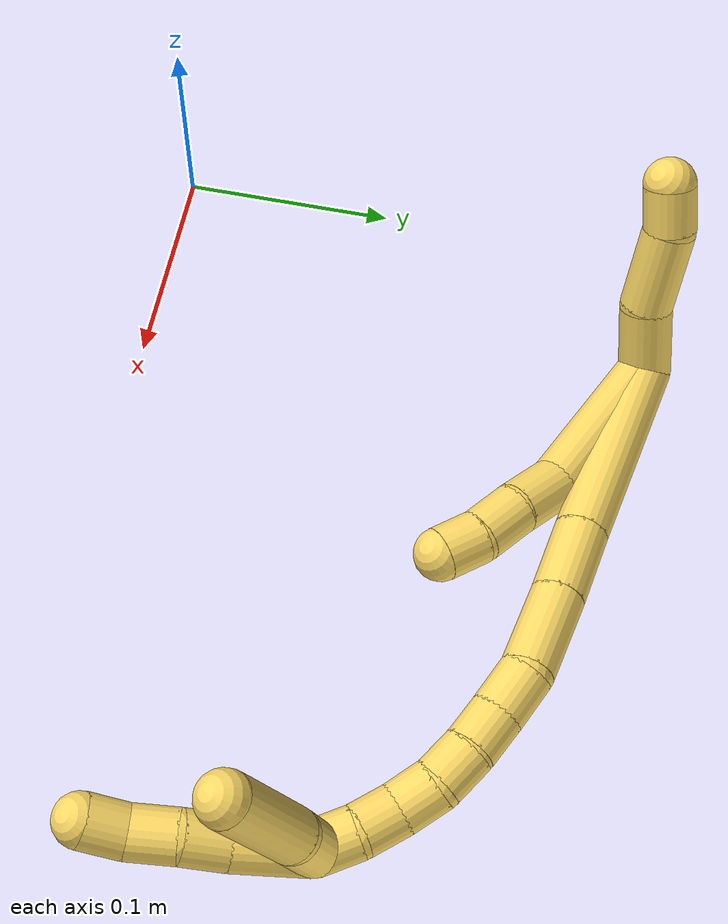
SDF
<sdf version="1.7">
 <world name="default">
  <model name="5">
   <static>0</static>
   <link name="5">
    <collision name="collision-cylinder-e_1_2_8">
     <pose>0.028809 -0.020367 -0.017771 2.28821 0.817242 1.52207</pose>
     <geometry><cylinder><radius>0.0125</radius><length>0.079008</length></cylinder></geometry>
     <surface>
      <friction><ode><mu>1.16</mu><mu2>1.16</mu2><slip1>0</slip1><slip2>0</slip2></ode></friction>
      <contact><ode><kp>1e+06</kp><kd>1</kd><max_vel>0</max_vel><min_depth>0.001</min_depth></ode></contact>
     </surface>
    </collision>
    <visual name="visual-cylinder-e_1_2_8">
     <pose>0.028809 -0.020367 -0.017771 2.28821 0.817242 1.52207</pose>
     <geometry><cylinder><radius>0.0125</radius><length>0.079008</length></cylinder></geometry>
     <material><ambient>1 0.858824 0.4 1</ambient></material>
    </visual>
    <collision name="collision-cylinder-e_2_8_9">
     <pose>0.066288 -0.045454 -0.044916 2.67523 0.690437 1.97426</pose>
     <geometry><cylinder><radius>0.0125</radius><length>0.027226</length></cylinder></geometry>
     <surface>
      <friction><ode><mu>1.16</mu><mu2>1.16</mu2><slip1>0</slip1><slip2>0</slip2></ode></friction>
      <contact><ode><kp>1e+06</kp><kd>1</kd><max_vel>0</max_vel><min_depth>0.001</min_depth></ode></contact>
     </surface>
    </collision>
    <visual name="visual-cylinder-e_2_8_9">
     <pose>0.066288 -0.045454 -0.044916 2.67523 0.690437 1.97426</pose>
     <geometry><cylinder><radius>0.0125</radius><length>0.027226</length></cylinder></geometry>
     <material><ambient>1 0.858824 0.4 1</ambient></material>
    </visual>
    <collision name="collision-cylinder-e_3_9_10">
     <pose>0.083753 -0.05419 -0.061192 2.61456 0.833658 2.0471</pose>
     <geometry><cylinder><radius>0.0125</radius><length>0.02376</length></cylinder></geometry>
     <surface>
      <friction><ode><mu>1.16</mu><mu2>1.16</mu2><slip1>0</slip1><slip2>0</slip2></ode></friction>
      <contact><ode><kp>1e+06</kp><kd>1</kd><max_vel>0</max_vel><min_depth>0.001</min_depth></ode></contact>
     </surface>
    </collision>
    <visual name="visual-cylinder-e_3_9_10">
     <pose>0.083753 -0.05419 -0.061192 2.61456 0.833658 2.0471</pose>
     <geometry><cylinder><radius>0.0125</radius><length>0.02376</length></cylinder></geometry>
     <material><ambient>1 0.858824 0.4 1</ambient></material>
    </visual>
    <collision name="collision-cylinder-e_4_10_6">
     <pose>0.100447 -0.05938 -0.074119 2.94921 0.910063 2.75218</pose>
     <geometry><cylinder><radius>0.0125</radius><length>0.020005</length></cylinder></geometry>
     <surface>
      <friction><ode><mu>1.16</mu><mu2>1.16</mu2><slip1>0</slip1><slip2>0</slip2></ode></friction>
      <contact><ode><kp>1e+06</kp><kd>1</kd><max_vel>0</max_vel><min_depth>0.001</min_depth></ode></contact>
     </surface>
    </collision>
    <visual name="visual-cylinder-e_4_10_6">
     <pose>0.100447 -0.05938 -0.074119 2.94921 0.910063 2.75218</pose>
     <geometry><cylinder><radius>0.0125</radius><length>0.020005</length></cylinder></geometry>
     <material><ambient>1 0.858824 0.4 1</ambient></material>
    </visual>
    <collision name="collision-cylinder-e_1_2_11">
     <pose>-0.011268 0.004994 -0.013257 -2.78133 -0.671939 2.18024</pose>
     <geometry><cylinder><radius>0.0125</radius><length>0.036203</length></cylinder></geometry>
     <surface>
      <friction><ode><mu>1.16</mu><mu2>1.16</mu2><slip1>0</slip1><slip2>0</slip2></ode></friction>
      <contact><ode><kp>1e+06</kp><kd>1</kd><max_vel>0</max_vel><min_depth>0.001</min_depth></ode></contact>
     </surface>
    </collision>
    <visual name="visual-cylinder-e_1_2_11">
     <pose>-0.011268 0.004994 -0.013257 -2.78133 -0.671939 2.18024</pose>
     <geometry><cylinder><radius>0.0125</radius><length>0.036203</length></cylinder></geometry>
     <material><ambient>1 0.858824 0.4 1</ambient></material>
    </visual>
    <collision name="collision-cylinder-e_2_11_12">
     <pose>-0.038857 0.01347 -0.038894 -2.86738 -0.903448 2.58747</pose>
     <geometry><cylinder><radius>0.0125</radius><length>0.041557</length></cylinder></geometry>
     <surface>
      <friction><ode><mu>1.16</mu><mu2>1.16</mu2><slip1>0</slip1><slip2>0</slip2></ode></friction>
      <contact><ode><kp>1e+06</kp><kd>1</kd><max_vel>0</max_vel><min_depth>0.001</min_depth></ode></contact>
     </surface>
    </collision>
    <visual name="visual-cylinder-e_2_11_12">
     <pose>-0.038857 0.01347 -0.038894 -2.86738 -0.903448 2.58747</pose>
     <geometry><cylinder><radius>0.0125</radius><length>0.041557</length></cylinder></geometry>
     <material><ambient>1 0.858824 0.4 1</ambient></material>
    </visual>
    <collision name="collision-cylinder-e_3_12_5">
     <pose>-0.062134 0.021158 -0.058862 -2.63558 -0.675856 1.87297</pose>
     <geometry><cylinder><radius>0.0125</radius><length>0.02224</length></cylinder></geometry>
     <surface>
      <friction><ode><mu>1.16</mu><mu2>1.16</mu2><slip1>0</slip1><slip2>0</slip2></ode></friction>
      <contact><ode><kp>1e+06</kp><kd>1</kd><max_vel>0</max_vel><min_depth>0.001</min_depth></ode></contact>
     </surface>
    </collision>
    <visual name="visual-cylinder-e_3_12_5">
     <pose>-0.062134 0.021158 -0.058862 -2.63558 -0.675856 1.87297</pose>
     <geometry><cylinder><radius>0.0125</radius><length>0.02224</length></cylinder></geometry>
     <material><ambient>1 0.858824 0.4 1</ambient></material>
    </visual>
    <collision name="collision-cylinder-e_1_2_13">
     <pose>0.029575 -0.035069 -0.017805 2.04061 0.644763 0.996796</pose>
     <geometry><cylinder><radius>0.0125</radius><length>0.098418</length></cylinder></geometry>
     <surface>
      <friction><ode><mu>1.16</mu><mu2>1.16</mu2><slip1>0</slip1><slip2>0</slip2></ode></friction>
      <contact><ode><kp>1e+06</kp><kd>1</kd><max_vel>0</max_vel><min_depth>0.001</min_depth></ode></contact>
     </surface>
    </collision>
    <visual name="visual-cylinder-e_1_2_13">
     <pose>0.029575 -0.035069 -0.017805 2.04061 0.644763 0.996796</pose>
     <geometry><cylinder><radius>0.0125</radius><length>0.098418</length></cylinder></geometry>
     <material><ambient>1 0.858824 0.4 1</ambient></material>
    </visual>
    <collision name="collision-cylinder-e_2_13_14">
     <pose>0.069973 -0.083337 -0.041956 2.0189 0.63644 0.965096</pose>
     <geometry><cylinder><radius>0.0125</radius><length>0.036422</length></cylinder></geometry>
     <surface>
      <friction><ode><mu>1.16</mu><mu2>1.16</mu2><slip1>0</slip1><slip2>0</slip2></ode></friction>
      <contact><ode><kp>1e+06</kp><kd>1</kd><max_vel>0</max_vel><min_depth>0.001</min_depth></ode></contact>
     </surface>
    </collision>
    <visual name="visual-cylinder-e_2_13_14">
     <pose>0.069973 -0.083337 -0.041956 2.0189 0.63644 0.965096</pose>
     <geometry><cylinder><radius>0.0125</radius><length>0.036422</length></cylinder></geometry>
     <material><ambient>1 0.858824 0.4 1</ambient></material>
    </visual>
    <collision name="collision-cylinder-e_3_14_15">
     <pose>0.093344 -0.111068 -0.055863 2.05063 0.653629 1.01872</pose>
     <geometry><cylinder><radius>0.0125</radius><length>0.041269</length></cylinder></geometry>
     <surface>
      <friction><ode><mu>1.16</mu><mu2>1.16</mu2><slip1>0</slip1><slip2>0</slip2></ode></friction>
      <contact><ode><kp>1e+06</kp><kd>1</kd><max_vel>0</max_vel><min_depth>0.001</min_depth></ode></contact>
     </surface>
    </collision>
    <visual name="visual-cylinder-e_3_14_15">
     <pose>0.093344 -0.111068 -0.055863 2.05063 0.653629 1.01872</pose>
     <geometry><cylinder><radius>0.0125</radius><length>0.041269</length></cylinder></geometry>
     <material><ambient>1 0.858824 0.4 1</ambient></material>
    </visual>
    <collision name="collision-cylinder-e_4_15_16">
     <pose>0.115513 -0.131012 -0.066737 2.11985 0.987761 1.53054</pose>
     <geometry><cylinder><radius>0.0125</radius><length>0.023051</length></cylinder></geometry>
     <surface>
      <friction><ode><mu>1.16</mu><mu2>1.16</mu2><slip1>0</slip1><slip2>0</slip2></ode></friction>
      <contact><ode><kp>1e+06</kp><kd>1</kd><max_vel>0</max_vel><min_depth>0.001</min_depth></ode></contact>
     </surface>
    </collision>
    <visual name="visual-cylinder-e_4_15_16">
     <pose>0.115513 -0.131012 -0.066737 2.11985 0.987761 1.53054</pose>
     <geometry><cylinder><radius>0.0125</radius><length>0.023051</length></cylinder></geometry>
     <material><ambient>1 0.858824 0.4 1</ambient></material>
    </visual>
    <collision name="collision-cylinder-e_5_16_17">
     <pose>0.133222 -0.141341 -0.07394 2.24043 0.91135 1.58374</pose>
     <geometry><cylinder><radius>0.0125</radius><length>0.020466</length></cylinder></geometry>
     <surface>
      <friction><ode><mu>1.16</mu><mu2>1.16</mu2><slip1>0</slip1><slip2>0</slip2></ode></friction>
      <contact><ode><kp>1e+06</kp><kd>1</kd><max_vel>0</max_vel><min_depth>0.001</min_depth></ode></contact>
     </surface>
    </collision>
    <visual name="visual-cylinder-e_5_16_17">
     <pose>0.133222 -0.141341 -0.07394 2.24043 0.91135 1.58374</pose>
     <geometry><cylinder><radius>0.0125</radius><length>0.020466</length></cylinder></geometry>
     <material><ambient>1 0.858824 0.4 1</ambient></material>
    </visual>
    <collision name="collision-cylinder-e_6_17_18">
     <pose>0.150107 -0.149763 -0.081253 2.34379 1.06271 1.8973</pose>
     <geometry><cylinder><radius>0.0125</radius><length>0.020139</length></cylinder></geometry>
     <surface>
      <friction><ode><mu>1.16</mu><mu2>1.16</mu2><slip1>0</slip1><slip2>0</slip2></ode></friction>
      <contact><ode><kp>1e+06</kp><kd>1</kd><max_vel>0</max_vel><min_depth>0.001</min_depth></ode></contact>
     </surface>
    </collision>
    <visual name="visual-cylinder-e_6_17_18">
     <pose>0.150107 -0.149763 -0.081253 2.34379 1.06271 1.8973</pose>
     <geometry><cylinder><radius>0.0125</radius><length>0.020139</length></cylinder></geometry>
     <material><ambient>1 0.858824 0.4 1</ambient></material>
    </visual>
    <collision name="collision-cylinder-e_7_18_19">
     <pose>0.168565 -0.154014 -0.08754 2.88759 1.27333 2.79957</pose>
     <geometry><cylinder><radius>0.0125</radius><length>0.020208</length></cylinder></geometry>
     <surface>
      <friction><ode><mu>1.16</mu><mu2>1.16</mu2><slip1>0</slip1><slip2>0</slip2></ode></friction>
      <contact><ode><kp>1e+06</kp><kd>1</kd><max_vel>0</max_vel><min_depth>0.001</min_depth></ode></contact>
     </surface>
    </collision>
    <visual name="visual-cylinder-e_7_18_19">
     <pose>0.168565 -0.154014 -0.08754 2.88759 1.27333 2.79957</pose>
     <geometry><cylinder><radius>0.0125</radius><length>0.020208</length></cylinder></geometry>
     <material><ambient>1 0.858824 0.4 1</ambient></material>
    </visual>
    <collision name="collision-cylinder-e_8_19_20">
     <pose>0.186505 -0.156035 -0.09589 2.91275 0.973611 2.71397</pose>
     <geometry><cylinder><radius>0.0125</radius><length>0.020026</length></cylinder></geometry>
     <surface>
      <friction><ode><mu>1.16</mu><mu2>1.16</mu2><slip1>0</slip1><slip2>0</slip2></ode></friction>
      <contact><ode><kp>1e+06</kp><kd>1</kd><max_vel>0</max_vel><min_depth>0.001</min_depth></ode></contact>
     </surface>
    </collision>
    <visual name="visual-cylinder-e_8_19_20">
     <pose>0.186505 -0.156035 -0.09589 2.91275 0.973611 2.71397</pose>
     <geometry><cylinder><radius>0.0125</radius><length>0.020026</length></cylinder></geometry>
     <material><ambient>1 0.858824 0.4 1</ambient></material>
    </visual>
    <collision name="collision-cylinder-e_9_20_1">
     <pose>0.203701 -0.156408 -0.105813 -2.94052 1.10069 -2.81569</pose>
     <geometry><cylinder><radius>0.0125</radius><length>0.02</length></cylinder></geometry>
     <surface>
      <friction><ode><mu>1.16</mu><mu2>1.16</mu2><slip1>0</slip1><slip2>0</slip2></ode></friction>
      <contact><ode><kp>1e+06</kp><kd>1</kd><max_vel>0</max_vel><min_depth>0.001</min_depth></ode></contact>
     </surface>
    </collision>
    <visual name="visual-cylinder-e_9_20_1">
     <pose>0.203701 -0.156408 -0.105813 -2.94052 1.10069 -2.81569</pose>
     <geometry><cylinder><radius>0.0125</radius><length>0.02</length></cylinder></geometry>
     <material><ambient>1 0.858824 0.4 1</ambient></material>
    </visual>
    <collision name="collision-cylinder-e_1_1_21">
     <pose>0.205804 -0.161798 -0.13132 2.85125 -0.30041 -1.60537</pose>
     <geometry><cylinder><radius>0.0125</radius><length>0.046039</length></cylinder></geometry>
     <surface>
      <friction><ode><mu>1.16</mu><mu2>1.16</mu2><slip1>0</slip1><slip2>0</slip2></ode></friction>
      <contact><ode><kp>1e+06</kp><kd>1</kd><max_vel>0</max_vel><min_depth>0.001</min_depth></ode></contact>
     </surface>
    </collision>
    <visual name="visual-cylinder-e_1_1_21">
     <pose>0.205804 -0.161798 -0.13132 2.85125 -0.30041 -1.60537</pose>
     <geometry><cylinder><radius>0.0125</radius><length>0.046039</length></cylinder></geometry>
     <material><ambient>1 0.858824 0.4 1</ambient></material>
    </visual>
    <collision name="collision-cylinder-e_2_21_4">
     <pose>0.196083 -0.168046 -0.179211 -3.13982 -0.108049 3.10876</pose>
     <geometry><cylinder><radius>0.0125</radius><length>0.053961</length></cylinder></geometry>
     <surface>
      <friction><ode><mu>1.16</mu><mu2>1.16</mu2><slip1>0</slip1><slip2>0</slip2></ode></friction>
      <contact><ode><kp>1e+06</kp><kd>1</kd><max_vel>0</max_vel><min_depth>0.001</min_depth></ode></contact>
     </surface>
    </collision>
    <visual name="visual-cylinder-e_2_21_4">
     <pose>0.196083 -0.168046 -0.179211 -3.13982 -0.108049 3.10876</pose>
     <geometry><cylinder><radius>0.0125</radius><length>0.053961</length></cylinder></geometry>
     <material><ambient>1 0.858824 0.4 1</ambient></material>
    </visual>
    <collision name="collision-cylinder-e_1_1_22">
     <pose>0.224131 -0.148792 -0.122357 -2.63539 0.693877 -1.89966</pose>
     <geometry><cylinder><radius>0.0125</radius><length>0.03601</length></cylinder></geometry>
     <surface>
      <friction><ode><mu>1.16</mu><mu2>1.16</mu2><slip1>0</slip1><slip2>0</slip2></ode></friction>
      <contact><ode><kp>1e+06</kp><kd>1</kd><max_vel>0</max_vel><min_depth>0.001</min_depth></ode></contact>
     </surface>
    </collision>
    <visual name="visual-cylinder-e_1_1_22">
     <pose>0.224131 -0.148792 -0.122357 -2.63539 0.693877 -1.89966</pose>
     <geometry><cylinder><radius>0.0125</radius><length>0.03601</length></cylinder></geometry>
     <material><ambient>1 0.858824 0.4 1</ambient></material>
    </visual>
    <collision name="collision-cylinder-e_2_22_23">
     <pose>0.241369 -0.138103 -0.142505 -2.6823 0.567818 -1.79071</pose>
     <geometry><cylinder><radius>0.0125</radius><length>0.021284</length></cylinder></geometry>
     <surface>
      <friction><ode><mu>1.16</mu><mu2>1.16</mu2><slip1>0</slip1><slip2>0</slip2></ode></friction>
      <contact><ode><kp>1e+06</kp><kd>1</kd><max_vel>0</max_vel><min_depth>0.001</min_depth></ode></contact>
     </surface>
    </collision>
    <visual name="visual-cylinder-e_2_22_23">
     <pose>0.241369 -0.138103 -0.142505 -2.6823 0.567818 -1.79071</pose>
     <geometry><cylinder><radius>0.0125</radius><length>0.021284</length></cylinder></geometry>
     <material><ambient>1 0.858824 0.4 1</ambient></material>
    </visual>
    <collision name="collision-cylinder-e_3_23_24">
     <pose>0.254798 -0.128853 -0.156981 -2.45508 0.74721 -1.66309</pose>
     <geometry><cylinder><radius>0.0125</radius><length>0.022678</length></cylinder></geometry>
     <surface>
      <friction><ode><mu>1.16</mu><mu2>1.16</mu2><slip1>0</slip1><slip2>0</slip2></ode></friction>
      <contact><ode><kp>1e+06</kp><kd>1</kd><max_vel>0</max_vel><min_depth>0.001</min_depth></ode></contact>
     </surface>
    </collision>
    <visual name="visual-cylinder-e_3_23_24">
     <pose>0.254798 -0.128853 -0.156981 -2.45508 0.74721 -1.66309</pose>
     <geometry><cylinder><radius>0.0125</radius><length>0.022678</length></cylinder></geometry>
     <material><ambient>1 0.858824 0.4 1</ambient></material>
    </visual>
    <collision name="collision-cylinder-e_4_24_3">
     <pose>0.266868 -0.119416 -0.171408 -2.66122 0.450961 -1.50531</pose>
     <geometry><cylinder><radius>0.0125</radius><length>0.020028</length></cylinder></geometry>
     <surface>
      <friction><ode><mu>1.16</mu><mu2>1.16</mu2><slip1>0</slip1><slip2>0</slip2></ode></friction>
      <contact><ode><kp>1e+06</kp><kd>1</kd><max_vel>0</max_vel><min_depth>0.001</min_depth></ode></contact>
     </surface>
    </collision>
    <visual name="visual-cylinder-e_4_24_3">
     <pose>0.266868 -0.119416 -0.171408 -2.66122 0.450961 -1.50531</pose>
     <geometry><cylinder><radius>0.0125</radius><length>0.020028</length></cylinder></geometry>
     <material><ambient>1 0.858824 0.4 1</ambient></material>
    </visual>
    <collision name="collision-sphere-3">
     <pose>0.271232 -0.115251 -0.179401 0 -0 0</pose>
     <geometry><sphere><radius>0.0125</radius></sphere></geometry>
     <surface>
      <friction><ode><mu>1.16</mu><mu2>1.16</mu2><slip1>0</slip1><slip2>0</slip2></ode></friction>
      <contact><ode><kp>1e+06</kp><kd>1</kd><max_vel>0</max_vel><min_depth>0.001</min_depth></ode></contact>
     </surface>
    </collision>
    <visual name="visual-sphere-3">
     <pose>0.271232 -0.115251 -0.179401 0 -0 0</pose>
     <geometry><sphere><radius>0.0125</radius></sphere></geometry>
     <material><ambient>1 0.858824 0.4 1</ambient></material>
    </visual>
    <collision name="collision-sphere-24">
     <pose>0.262503 -0.123581 -0.163415 0 -0 0</pose>
     <geometry><sphere><radius>0.0125</radius></sphere></geometry>
     <surface>
      <friction><ode><mu>1.16</mu><mu2>1.16</mu2><slip1>0</slip1><slip2>0</slip2></ode></friction>
      <contact><ode><kp>1e+06</kp><kd>1</kd><max_vel>0</max_vel><min_depth>0.001</min_depth></ode></contact>
     </surface>
    </collision>
    <visual name="visual-sphere-24">
     <pose>0.262503 -0.123581 -0.163415 0 -0 0</pose>
     <geometry><sphere><radius>0.0125</radius></sphere></geometry>
     <material><ambient>1 0.858824 0.4 1</ambient></material>
    </visual>
    <collision name="collision-sphere-23">
     <pose>0.247092 -0.134126 -0.150548 0 -0 0</pose>
     <geometry><sphere><radius>0.0125</radius></sphere></geometry>
     <surface>
      <friction><ode><mu>1.16</mu><mu2>1.16</mu2><slip1>0</slip1><slip2>0</slip2></ode></friction>
      <contact><ode><kp>1e+06</kp><kd>1</kd><max_vel>0</max_vel><min_depth>0.001</min_depth></ode></contact>
     </surface>
    </collision>
    <visual name="visual-sphere-23">
     <pose>0.247092 -0.134126 -0.150548 0 -0 0</pose>
     <geometry><sphere><radius>0.0125</radius></sphere></geometry>
     <material><ambient>1 0.858824 0.4 1</ambient></material>
    </visual>
    <collision name="collision-sphere-22">
     <pose>0.235645 -0.142081 -0.134463 0 -0 0</pose>
     <geometry><sphere><radius>0.0125</radius></sphere></geometry>
     <surface>
      <friction><ode><mu>1.16</mu><mu2>1.16</mu2><slip1>0</slip1><slip2>0</slip2></ode></friction>
      <contact><ode><kp>1e+06</kp><kd>1</kd><max_vel>0</max_vel><min_depth>0.001</min_depth></ode></contact>
     </surface>
    </collision>
    <visual name="visual-sphere-22">
     <pose>0.235645 -0.142081 -0.134463 0 -0 0</pose>
     <geometry><sphere><radius>0.0125</radius></sphere></geometry>
     <material><ambient>1 0.858824 0.4 1</ambient></material>
    </visual>
    <collision name="collision-sphere-4">
     <pose>0.193173 -0.167998 -0.206034 0 -0 0</pose>
     <geometry><sphere><radius>0.0125</radius></sphere></geometry>
     <surface>
      <friction><ode><mu>1.16</mu><mu2>1.16</mu2><slip1>0</slip1><slip2>0</slip2></ode></friction>
      <contact><ode><kp>1e+06</kp><kd>1</kd><max_vel>0</max_vel><min_depth>0.001</min_depth></ode></contact>
     </surface>
    </collision>
    <visual name="visual-sphere-4">
     <pose>0.193173 -0.167998 -0.206034 0 -0 0</pose>
     <geometry><sphere><radius>0.0125</radius></sphere></geometry>
     <material><ambient>1 0.858824 0.4 1</ambient></material>
    </visual>
    <collision name="collision-sphere-21">
     <pose>0.198992 -0.168093 -0.152388 0 -0 0</pose>
     <geometry><sphere><radius>0.0125</radius></sphere></geometry>
     <surface>
      <friction><ode><mu>1.16</mu><mu2>1.16</mu2><slip1>0</slip1><slip2>0</slip2></ode></friction>
      <contact><ode><kp>1e+06</kp><kd>1</kd><max_vel>0</max_vel><min_depth>0.001</min_depth></ode></contact>
     </surface>
    </collision>
    <visual name="visual-sphere-21">
     <pose>0.198992 -0.168093 -0.152388 0 -0 0</pose>
     <geometry><sphere><radius>0.0125</radius></sphere></geometry>
     <material><ambient>1 0.858824 0.4 1</ambient></material>
    </visual>
    <collision name="collision-sphere-1">
     <pose>0.212616 -0.155503 -0.110251 0 -0 0</pose>
     <geometry><sphere><radius>0.0125</radius></sphere></geometry>
     <surface>
      <friction><ode><mu>1.16</mu><mu2>1.16</mu2><slip1>0</slip1><slip2>0</slip2></ode></friction>
      <contact><ode><kp>1e+06</kp><kd>1</kd><max_vel>0</max_vel><min_depth>0.001</min_depth></ode></contact>
     </surface>
    </collision>
    <visual name="visual-sphere-1">
     <pose>0.212616 -0.155503 -0.110251 0 -0 0</pose>
     <geometry><sphere><radius>0.0125</radius></sphere></geometry>
     <material><ambient>1 0.858824 0.4 1</ambient></material>
    </visual>
    <collision name="collision-sphere-11">
     <pose>-0.022537 0.009988 -0.026514 0 -0 0</pose>
     <geometry><sphere><radius>0.0125</radius></sphere></geometry>
     <surface>
      <friction><ode><mu>1.16</mu><mu2>1.16</mu2><slip1>0</slip1><slip2>0</slip2></ode></friction>
      <contact><ode><kp>1e+06</kp><kd>1</kd><max_vel>0</max_vel><min_depth>0.001</min_depth></ode></contact>
     </surface>
    </collision>
    <visual name="visual-sphere-11">
     <pose>-0.022537 0.009988 -0.026514 0 -0 0</pose>
     <geometry><sphere><radius>0.0125</radius></sphere></geometry>
     <material><ambient>1 0.858824 0.4 1</ambient></material>
    </visual>
    <collision name="collision-sphere-6">
     <pose>0.108344 -0.060553 -0.080145 0 -0 0</pose>
     <geometry><sphere><radius>0.0125</radius></sphere></geometry>
     <surface>
      <friction><ode><mu>1.16</mu><mu2>1.16</mu2><slip1>0</slip1><slip2>0</slip2></ode></friction>
      <contact><ode><kp>1e+06</kp><kd>1</kd><max_vel>0</max_vel><min_depth>0.001</min_depth></ode></contact>
     </surface>
    </collision>
    <visual name="visual-sphere-6">
     <pose>0.108344 -0.060553 -0.080145 0 -0 0</pose>
     <geometry><sphere><radius>0.0125</radius></sphere></geometry>
     <material><ambient>1 0.858824 0.4 1</ambient></material>
    </visual>
    <collision name="collision-sphere-10">
     <pose>0.092549 -0.058206 -0.068094 0 -0 0</pose>
     <geometry><sphere><radius>0.0125</radius></sphere></geometry>
     <surface>
      <friction><ode><mu>1.16</mu><mu2>1.16</mu2><slip1>0</slip1><slip2>0</slip2></ode></friction>
      <contact><ode><kp>1e+06</kp><kd>1</kd><max_vel>0</max_vel><min_depth>0.001</min_depth></ode></contact>
     </surface>
    </collision>
    <visual name="visual-sphere-10">
     <pose>0.092549 -0.058206 -0.068094 0 -0 0</pose>
     <geometry><sphere><radius>0.0125</radius></sphere></geometry>
     <material><ambient>1 0.858824 0.4 1</ambient></material>
    </visual>
    <collision name="collision-sphere-9">
     <pose>0.074958 -0.050173 -0.05429 0 -0 0</pose>
     <geometry><sphere><radius>0.0125</radius></sphere></geometry>
     <surface>
      <friction><ode><mu>1.16</mu><mu2>1.16</mu2><slip1>0</slip1><slip2>0</slip2></ode></friction>
      <contact><ode><kp>1e+06</kp><kd>1</kd><max_vel>0</max_vel><min_depth>0.001</min_depth></ode></contact>
     </surface>
    </collision>
    <visual name="visual-sphere-9">
     <pose>0.074958 -0.050173 -0.05429 0 -0 0</pose>
     <geometry><sphere><radius>0.0125</radius></sphere></geometry>
     <material><ambient>1 0.858824 0.4 1</ambient></material>
    </visual>
    <collision name="collision-sphere-2">
     <geometry><sphere><radius>0.0125</radius></sphere></geometry>
     <surface>
      <friction><ode><mu>1.16</mu><mu2>1.16</mu2><slip1>0</slip1><slip2>0</slip2></ode></friction>
      <contact><ode><kp>1e+06</kp><kd>1</kd><max_vel>0</max_vel><min_depth>0.001</min_depth></ode></contact>
     </surface>
    </collision>
    <visual name="visual-sphere-2">
     <geometry><sphere><radius>0.0125</radius></sphere></geometry>
     <material><ambient>1 0.858824 0.4 1</ambient></material>
    </visual>
    <collision name="collision-sphere-19">
     <pose>0.178225 -0.154758 -0.090406 0 -0 0</pose>
     <geometry><sphere><radius>0.0125</radius></sphere></geometry>
     <surface>
      <friction><ode><mu>1.16</mu><mu2>1.16</mu2><slip1>0</slip1><slip2>0</slip2></ode></friction>
      <contact><ode><kp>1e+06</kp><kd>1</kd><max_vel>0</max_vel><min_depth>0.001</min_depth></ode></contact>
     </surface>
    </collision>
    <visual name="visual-sphere-19">
     <pose>0.178225 -0.154758 -0.090406 0 -0 0</pose>
     <geometry><sphere><radius>0.0125</radius></sphere></geometry>
     <material><ambient>1 0.858824 0.4 1</ambient></material>
    </visual>
    <collision name="collision-sphere-8">
     <pose>0.057618 -0.040735 -0.035541 0 -0 0</pose>
     <geometry><sphere><radius>0.0125</radius></sphere></geometry>
     <surface>
      <friction><ode><mu>1.16</mu><mu2>1.16</mu2><slip1>0</slip1><slip2>0</slip2></ode></friction>
      <contact><ode><kp>1e+06</kp><kd>1</kd><max_vel>0</max_vel><min_depth>0.001</min_depth></ode></contact>
     </surface>
    </collision>
    <visual name="visual-sphere-8">
     <pose>0.057618 -0.040735 -0.035541 0 -0 0</pose>
     <geometry><sphere><radius>0.0125</radius></sphere></geometry>
     <material><ambient>1 0.858824 0.4 1</ambient></material>
    </visual>
    <collision name="collision-sphere-12">
     <pose>-0.055178 0.016953 -0.051273 0 -0 0</pose>
     <geometry><sphere><radius>0.0125</radius></sphere></geometry>
     <surface>
      <friction><ode><mu>1.16</mu><mu2>1.16</mu2><slip1>0</slip1><slip2>0</slip2></ode></friction>
      <contact><ode><kp>1e+06</kp><kd>1</kd><max_vel>0</max_vel><min_depth>0.001</min_depth></ode></contact>
     </surface>
    </collision>
    <visual name="visual-sphere-12">
     <pose>-0.055178 0.016953 -0.051273 0 -0 0</pose>
     <geometry><sphere><radius>0.0125</radius></sphere></geometry>
     <material><ambient>1 0.858824 0.4 1</ambient></material>
    </visual>
    <collision name="collision-sphere-5">
     <pose>-0.069091 0.025362 -0.06645 0 -0 0</pose>
     <geometry><sphere><radius>0.0125</radius></sphere></geometry>
     <surface>
      <friction><ode><mu>1.16</mu><mu2>1.16</mu2><slip1>0</slip1><slip2>0</slip2></ode></friction>
      <contact><ode><kp>1e+06</kp><kd>1</kd><max_vel>0</max_vel><min_depth>0.001</min_depth></ode></contact>
     </surface>
    </collision>
    <visual name="visual-sphere-5">
     <pose>-0.069091 0.025362 -0.06645 0 -0 0</pose>
     <geometry><sphere><radius>0.0125</radius></sphere></geometry>
     <material><ambient>1 0.858824 0.4 1</ambient></material>
    </visual>
    <collision name="collision-sphere-13">
     <pose>0.05915 -0.070137 -0.035611 0 -0 0</pose>
     <geometry><sphere><radius>0.0125</radius></sphere></geometry>
     <surface>
      <friction><ode><mu>1.16</mu><mu2>1.16</mu2><slip1>0</slip1><slip2>0</slip2></ode></friction>
      <contact><ode><kp>1e+06</kp><kd>1</kd><max_vel>0</max_vel><min_depth>0.001</min_depth></ode></contact>
     </surface>
    </collision>
    <visual name="visual-sphere-13">
     <pose>0.05915 -0.070137 -0.035611 0 -0 0</pose>
     <geometry><sphere><radius>0.0125</radius></sphere></geometry>
     <material><ambient>1 0.858824 0.4 1</ambient></material>
    </visual>
    <collision name="collision-sphere-14">
     <pose>0.080797 -0.096536 -0.048301 0 -0 0</pose>
     <geometry><sphere><radius>0.0125</radius></sphere></geometry>
     <surface>
      <friction><ode><mu>1.16</mu><mu2>1.16</mu2><slip1>0</slip1><slip2>0</slip2></ode></friction>
      <contact><ode><kp>1e+06</kp><kd>1</kd><max_vel>0</max_vel><min_depth>0.001</min_depth></ode></contact>
     </surface>
    </collision>
    <visual name="visual-sphere-14">
     <pose>0.080797 -0.096536 -0.048301 0 -0 0</pose>
     <geometry><sphere><radius>0.0125</radius></sphere></geometry>
     <material><ambient>1 0.858824 0.4 1</ambient></material>
    </visual>
    <collision name="collision-sphere-15">
     <pose>0.105891 -0.125599 -0.063426 0 -0 0</pose>
     <geometry><sphere><radius>0.0125</radius></sphere></geometry>
     <surface>
      <friction><ode><mu>1.16</mu><mu2>1.16</mu2><slip1>0</slip1><slip2>0</slip2></ode></friction>
      <contact><ode><kp>1e+06</kp><kd>1</kd><max_vel>0</max_vel><min_depth>0.001</min_depth></ode></contact>
     </surface>
    </collision>
    <visual name="visual-sphere-15">
     <pose>0.105891 -0.125599 -0.063426 0 -0 0</pose>
     <geometry><sphere><radius>0.0125</radius></sphere></geometry>
     <material><ambient>1 0.858824 0.4 1</ambient></material>
    </visual>
    <collision name="collision-sphere-16">
     <pose>0.125135 -0.136425 -0.070049 0 -0 0</pose>
     <geometry><sphere><radius>0.0125</radius></sphere></geometry>
     <surface>
      <friction><ode><mu>1.16</mu><mu2>1.16</mu2><slip1>0</slip1><slip2>0</slip2></ode></friction>
      <contact><ode><kp>1e+06</kp><kd>1</kd><max_vel>0</max_vel><min_depth>0.001</min_depth></ode></contact>
     </surface>
    </collision>
    <visual name="visual-sphere-16">
     <pose>0.125135 -0.136425 -0.070049 0 -0 0</pose>
     <geometry><sphere><radius>0.0125</radius></sphere></geometry>
     <material><ambient>1 0.858824 0.4 1</ambient></material>
    </visual>
    <collision name="collision-sphere-17">
     <pose>0.141309 -0.146256 -0.077832 0 -0 0</pose>
     <geometry><sphere><radius>0.0125</radius></sphere></geometry>
     <surface>
      <friction><ode><mu>1.16</mu><mu2>1.16</mu2><slip1>0</slip1><slip2>0</slip2></ode></friction>
      <contact><ode><kp>1e+06</kp><kd>1</kd><max_vel>0</max_vel><min_depth>0.001</min_depth></ode></contact>
     </surface>
    </collision>
    <visual name="visual-sphere-17">
     <pose>0.141309 -0.146256 -0.077832 0 -0 0</pose>
     <geometry><sphere><radius>0.0125</radius></sphere></geometry>
     <material><ambient>1 0.858824 0.4 1</ambient></material>
    </visual>
    <collision name="collision-sphere-18">
     <pose>0.158904 -0.15327 -0.084673 0 -0 0</pose>
     <geometry><sphere><radius>0.0125</radius></sphere></geometry>
     <surface>
      <friction><ode><mu>1.16</mu><mu2>1.16</mu2><slip1>0</slip1><slip2>0</slip2></ode></friction>
      <contact><ode><kp>1e+06</kp><kd>1</kd><max_vel>0</max_vel><min_depth>0.001</min_depth></ode></contact>
     </surface>
    </collision>
    <visual name="visual-sphere-18">
     <pose>0.158904 -0.15327 -0.084673 0 -0 0</pose>
     <geometry><sphere><radius>0.0125</radius></sphere></geometry>
     <material><ambient>1 0.858824 0.4 1</ambient></material>
    </visual>
    <collision name="collision-sphere-20">
     <pose>0.194786 -0.157313 -0.101374 0 -0 0</pose>
     <geometry><sphere><radius>0.0125</radius></sphere></geometry>
     <surface>
      <friction><ode><mu>1.16</mu><mu2>1.16</mu2><slip1>0</slip1><slip2>0</slip2></ode></friction>
      <contact><ode><kp>1e+06</kp><kd>1</kd><max_vel>0</max_vel><min_depth>0.001</min_depth></ode></contact>
     </surface>
    </collision>
    <visual name="visual-sphere-20">
     <pose>0.194786 -0.157313 -0.101374 0 -0 0</pose>
     <geometry><sphere><radius>0.0125</radius></sphere></geometry>
     <material><ambient>1 0.858824 0.4 1</ambient></material>
    </visual>
    <inertial>
     <pose>0.104003 -0.084805 -0.073596 0 -0 0</pose>
     <mass>0.75</mass>
     <inertia>
      <ixx>0.000129</ixx>
      <ixy>0</ixy>
      <ixz>0</ixz>
      <iyy>0.000167</iyy>
      <iyz>0</iyz>
      <izz>-3.6e-05</izz>
     </inertia>
    </inertial>
   </link>
   <pose>0.071305 0.240514 0.011494 -2.98581 0.557968 -0.866694</pose>
  </model>
 </world>
</sdf>
